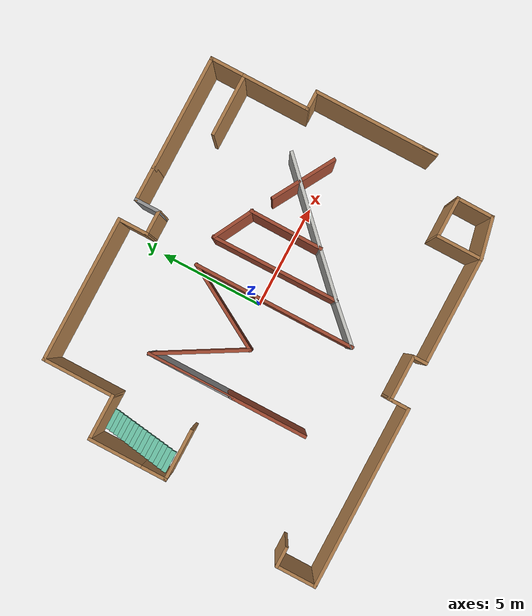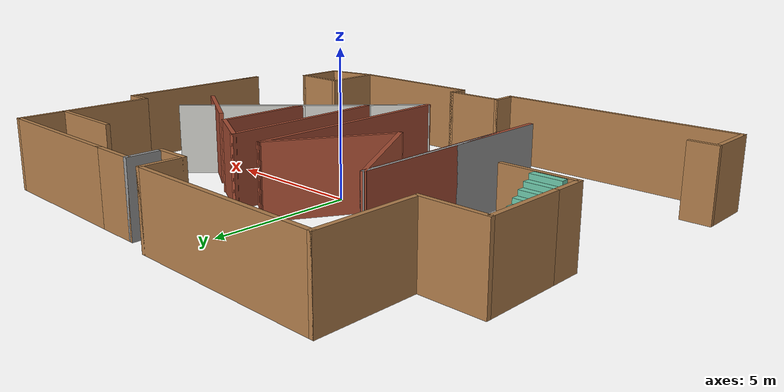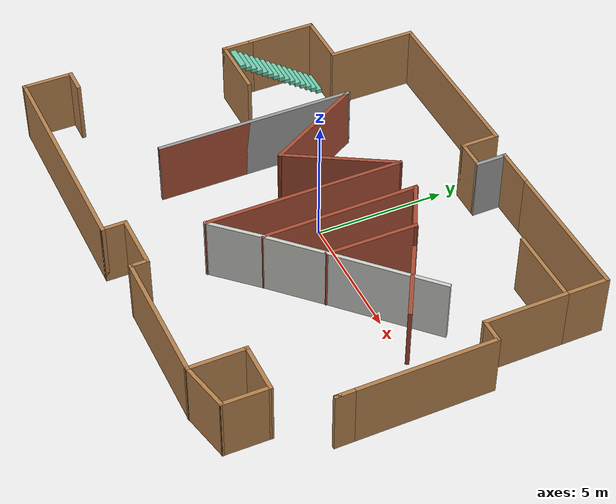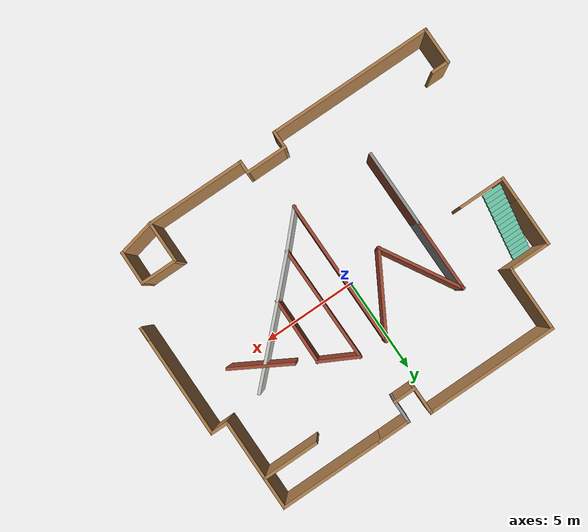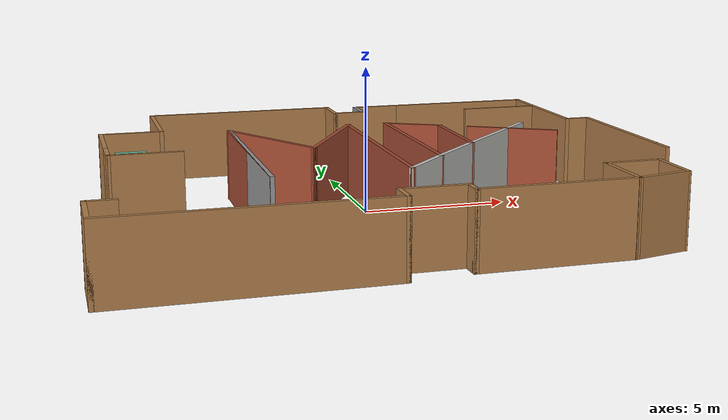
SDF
<?xml version='1.0'?>
<sdf version='1.6'>
  <model name='MDX_Maze'>
    <pose frame=''>-0.168001 -0.43336 0 0 -0 0</pose>
    <link name='Stairs_0'>
      <visual name='Stairs_0_Visual_0'>
        <pose frame=''>-7.65762 3.89363 0.083333 0 -0 0</pose>
        <geometry>
          <box>
            <size>1 0.233333 0.166667</size>
          </box>
        </geometry>
        <material>
          <script>
            <uri>file://media/materials/scripts/gazebo.material</uri>
            <name>Gazebo/Grey</name>
          </script>
          <ambient>0.435294 0.796078 0.67451 1</ambient>
        </material>
        <meta>
          <layer>0</layer>
        </meta>
      </visual>
      <collision name='Stairs_0_Collision_0'>
        <geometry>
          <box>
            <size>1 0.233333 0.166667</size>
          </box>
        </geometry>
        <pose frame=''>-7.65762 3.89363 0.083333 0 -0 0</pose>
      </collision>
      <visual name='Stairs_0_Visual_1'>
        <pose frame=''>-7.65762 3.6603 0.25 0 -0 0</pose>
        <geometry>
          <box>
            <size>1 0.233333 0.166667</size>
          </box>
        </geometry>
        <material>
          <script>
            <uri>file://media/materials/scripts/gazebo.material</uri>
            <name>Gazebo/Grey</name>
          </script>
          <ambient>0.435294 0.796078 0.67451 1</ambient>
        </material>
        <meta>
          <layer>0</layer>
        </meta>
      </visual>
      <collision name='Stairs_0_Collision_1'>
        <geometry>
          <box>
            <size>1 0.233333 0.166667</size>
          </box>
        </geometry>
        <pose frame=''>-7.65762 3.6603 0.25 0 -0 0</pose>
      </collision>
      <visual name='Stairs_0_Visual_2'>
        <pose frame=''>-7.65762 3.42696 0.416667 0 -0 0</pose>
        <geometry>
          <box>
            <size>1 0.233333 0.166667</size>
          </box>
        </geometry>
        <material>
          <script>
            <uri>file://media/materials/scripts/gazebo.material</uri>
            <name>Gazebo/Grey</name>
          </script>
          <ambient>0.435294 0.796078 0.67451 1</ambient>
        </material>
        <meta>
          <layer>0</layer>
        </meta>
      </visual>
      <collision name='Stairs_0_Collision_2'>
        <geometry>
          <box>
            <size>1 0.233333 0.166667</size>
          </box>
        </geometry>
        <pose frame=''>-7.65762 3.42696 0.416667 0 -0 0</pose>
      </collision>
      <visual name='Stairs_0_Visual_3'>
        <pose frame=''>-7.65762 3.19363 0.583333 0 -0 0</pose>
        <geometry>
          <box>
            <size>1 0.233333 0.166667</size>
          </box>
        </geometry>
        <material>
          <script>
            <uri>file://media/materials/scripts/gazebo.material</uri>
            <name>Gazebo/Grey</name>
          </script>
          <ambient>0.435294 0.796078 0.67451 1</ambient>
        </material>
        <meta>
          <layer>0</layer>
        </meta>
      </visual>
      <collision name='Stairs_0_Collision_3'>
        <geometry>
          <box>
            <size>1 0.233333 0.166667</size>
          </box>
        </geometry>
        <pose frame=''>-7.65762 3.19363 0.583333 0 -0 0</pose>
      </collision>
      <visual name='Stairs_0_Visual_4'>
        <pose frame=''>-7.65762 2.9603 0.75 0 -0 0</pose>
        <geometry>
          <box>
            <size>1 0.233333 0.166667</size>
          </box>
        </geometry>
        <material>
          <script>
            <uri>file://media/materials/scripts/gazebo.material</uri>
            <name>Gazebo/Grey</name>
          </script>
          <ambient>0.435294 0.796078 0.67451 1</ambient>
        </material>
        <meta>
          <layer>0</layer>
        </meta>
      </visual>
      <collision name='Stairs_0_Collision_4'>
        <geometry>
          <box>
            <size>1 0.233333 0.166667</size>
          </box>
        </geometry>
        <pose frame=''>-7.65762 2.9603 0.75 0 -0 0</pose>
      </collision>
      <visual name='Stairs_0_Visual_5'>
        <pose frame=''>-7.65762 2.72696 0.916667 0 -0 0</pose>
        <geometry>
          <box>
            <size>1 0.233333 0.166667</size>
          </box>
        </geometry>
        <material>
          <script>
            <uri>file://media/materials/scripts/gazebo.material</uri>
            <name>Gazebo/Grey</name>
          </script>
          <ambient>0.435294 0.796078 0.67451 1</ambient>
        </material>
        <meta>
          <layer>0</layer>
        </meta>
      </visual>
      <collision name='Stairs_0_Collision_5'>
        <geometry>
          <box>
            <size>1 0.233333 0.166667</size>
          </box>
        </geometry>
        <pose frame=''>-7.65762 2.72696 0.916667 0 -0 0</pose>
      </collision>
      <visual name='Stairs_0_Visual_6'>
        <pose frame=''>-7.65762 2.49363 1.08333 0 -0 0</pose>
        <geometry>
          <box>
            <size>1 0.233333 0.166667</size>
          </box>
        </geometry>
        <material>
          <script>
            <uri>file://media/materials/scripts/gazebo.material</uri>
            <name>Gazebo/Grey</name>
          </script>
          <ambient>0.435294 0.796078 0.67451 1</ambient>
        </material>
        <meta>
          <layer>0</layer>
        </meta>
      </visual>
      <collision name='Stairs_0_Collision_6'>
        <geometry>
          <box>
            <size>1 0.233333 0.166667</size>
          </box>
        </geometry>
        <pose frame=''>-7.65762 2.49363 1.08333 0 -0 0</pose>
      </collision>
      <visual name='Stairs_0_Visual_7'>
        <pose frame=''>-7.65762 2.2603 1.25 0 -0 0</pose>
        <geometry>
          <box>
            <size>1 0.233333 0.166667</size>
          </box>
        </geometry>
        <material>
          <script>
            <uri>file://media/materials/scripts/gazebo.material</uri>
            <name>Gazebo/Grey</name>
          </script>
          <ambient>0.435294 0.796078 0.67451 1</ambient>
        </material>
        <meta>
          <layer>0</layer>
        </meta>
      </visual>
      <collision name='Stairs_0_Collision_7'>
        <geometry>
          <box>
            <size>1 0.233333 0.166667</size>
          </box>
        </geometry>
        <pose frame=''>-7.65762 2.2603 1.25 0 -0 0</pose>
      </collision>
      <visual name='Stairs_0_Visual_8'>
        <pose frame=''>-7.65762 2.02696 1.41667 0 -0 0</pose>
        <geometry>
          <box>
            <size>1 0.233333 0.166667</size>
          </box>
        </geometry>
        <material>
          <script>
            <uri>file://media/materials/scripts/gazebo.material</uri>
            <name>Gazebo/Grey</name>
          </script>
          <ambient>0.435294 0.796078 0.67451 1</ambient>
        </material>
        <meta>
          <layer>0</layer>
        </meta>
      </visual>
      <collision name='Stairs_0_Collision_8'>
        <geometry>
          <box>
            <size>1 0.233333 0.166667</size>
          </box>
        </geometry>
        <pose frame=''>-7.65762 2.02696 1.41667 0 -0 0</pose>
      </collision>
      <visual name='Stairs_0_Visual_9'>
        <pose frame=''>-7.65762 1.79363 1.58333 0 -0 0</pose>
        <geometry>
          <box>
            <size>1 0.233333 0.166667</size>
          </box>
        </geometry>
        <material>
          <script>
            <uri>file://media/materials/scripts/gazebo.material</uri>
            <name>Gazebo/Grey</name>
          </script>
          <ambient>0.435294 0.796078 0.67451 1</ambient>
        </material>
        <meta>
          <layer>0</layer>
        </meta>
      </visual>
      <collision name='Stairs_0_Collision_9'>
        <geometry>
          <box>
            <size>1 0.233333 0.166667</size>
          </box>
        </geometry>
        <pose frame=''>-7.65762 1.79363 1.58333 0 -0 0</pose>
      </collision>
      <visual name='Stairs_0_Visual_10'>
        <pose frame=''>-7.65762 1.5603 1.75 0 -0 0</pose>
        <geometry>
          <box>
            <size>1 0.233333 0.166667</size>
          </box>
        </geometry>
        <material>
          <script>
            <uri>file://media/materials/scripts/gazebo.material</uri>
            <name>Gazebo/Grey</name>
          </script>
          <ambient>0.435294 0.796078 0.67451 1</ambient>
        </material>
        <meta>
          <layer>0</layer>
        </meta>
      </visual>
      <collision name='Stairs_0_Collision_10'>
        <geometry>
          <box>
            <size>1 0.233333 0.166667</size>
          </box>
        </geometry>
        <pose frame=''>-7.65762 1.5603 1.75 0 -0 0</pose>
      </collision>
      <visual name='Stairs_0_Visual_11'>
        <pose frame=''>-7.65762 1.32696 1.91667 0 -0 0</pose>
        <geometry>
          <box>
            <size>1 0.233333 0.166667</size>
          </box>
        </geometry>
        <material>
          <script>
            <uri>file://media/materials/scripts/gazebo.material</uri>
            <name>Gazebo/Grey</name>
          </script>
          <ambient>0.435294 0.796078 0.67451 1</ambient>
        </material>
        <meta>
          <layer>0</layer>
        </meta>
      </visual>
      <collision name='Stairs_0_Collision_11'>
        <geometry>
          <box>
            <size>1 0.233333 0.166667</size>
          </box>
        </geometry>
        <pose frame=''>-7.65762 1.32696 1.91667 0 -0 0</pose>
      </collision>
      <visual name='Stairs_0_Visual_12'>
        <pose frame=''>-7.65762 1.09363 2.08333 0 -0 0</pose>
        <geometry>
          <box>
            <size>1 0.233333 0.166667</size>
          </box>
        </geometry>
        <material>
          <script>
            <uri>file://media/materials/scripts/gazebo.material</uri>
            <name>Gazebo/Grey</name>
          </script>
          <ambient>0.435294 0.796078 0.67451 1</ambient>
        </material>
        <meta>
          <layer>0</layer>
        </meta>
      </visual>
      <collision name='Stairs_0_Collision_12'>
        <geometry>
          <box>
            <size>1 0.233333 0.166667</size>
          </box>
        </geometry>
        <pose frame=''>-7.65762 1.09363 2.08333 0 -0 0</pose>
      </collision>
      <visual name='Stairs_0_Visual_13'>
        <pose frame=''>-7.65762 0.860297 2.25 0 -0 0</pose>
        <geometry>
          <box>
            <size>1 0.233333 0.166667</size>
          </box>
        </geometry>
        <material>
          <script>
            <uri>file://media/materials/scripts/gazebo.material</uri>
            <name>Gazebo/Grey</name>
          </script>
          <ambient>0.435294 0.796078 0.67451 1</ambient>
        </material>
        <meta>
          <layer>0</layer>
        </meta>
      </visual>
      <collision name='Stairs_0_Collision_13'>
        <geometry>
          <box>
            <size>1 0.233333 0.166667</size>
          </box>
        </geometry>
        <pose frame=''>-7.65762 0.860297 2.25 0 -0 0</pose>
      </collision>
      <visual name='Stairs_0_Visual_14'>
        <pose frame=''>-7.65762 0.626963 2.41667 0 -0 0</pose>
        <geometry>
          <box>
            <size>1 0.233333 0.166667</size>
          </box>
        </geometry>
        <material>
          <script>
            <uri>file://media/materials/scripts/gazebo.material</uri>
            <name>Gazebo/Grey</name>
          </script>
          <ambient>0.435294 0.796078 0.67451 1</ambient>
        </material>
        <meta>
          <layer>0</layer>
        </meta>
      </visual>
      <collision name='Stairs_0_Collision_14'>
        <geometry>
          <box>
            <size>1 0.233333 0.166667</size>
          </box>
        </geometry>
        <pose frame=''>-7.65762 0.626963 2.41667 0 -0 0</pose>
      </collision>
    </link>
    <link name='Wall_10'>
      <collision name='Wall_10_Collision'>
        <geometry>
          <box>
            <size>7 0.15 2.5</size>
          </box>
        </geometry>
        <pose frame=''>0 0 1.25 0 -0 0</pose>
      </collision>
      <visual name='Wall_10_Visual'>
        <pose frame=''>0 0 1.25 0 -0 0</pose>
        <geometry>
          <box>
            <size>7 0.15 2.5</size>
          </box>
        </geometry>
        <material>
          <script>
            <uri>file://media/materials/scripts/gazebo.material</uri>
            <name>Gazebo/Wood</name>
          </script>
          <ambient>1 1 1 1</ambient>
        </material>
        <meta>
          <layer>0</layer>
        </meta>
      </visual>
      <pose frame=''>-2.8869 7.43809 0 0 -0 0</pose>
    </link>
    <link name='Wall_11'>
      <collision name='Wall_11_Collision'>
        <geometry>
          <box>
            <size>1.5 0.15 2.5</size>
          </box>
        </geometry>
        <pose frame=''>0 0 1.25 0 -0 0</pose>
      </collision>
      <visual name='Wall_11_Visual'>
        <pose frame=''>0 0 1.25 0 -0 0</pose>
        <geometry>
          <box>
            <size>1.5 0.15 2.5</size>
          </box>
        </geometry>
        <material>
          <script>
            <uri>file://media/materials/scripts/gazebo.material</uri>
            <name>Gazebo/Wood</name>
          </script>
          <ambient>1 1 1 1</ambient>
        </material>
        <meta>
          <layer>0</layer>
        </meta>
      </visual>
      <pose frame=''>0.538101 6.76309 0 0 -0 -1.5708</pose>
    </link>
    <link name='Wall_12'>
      <collision name='Wall_12_Collision'>
        <geometry>
          <box>
            <size>1.25 0.15 2.5</size>
          </box>
        </geometry>
        <pose frame=''>0 0 1.25 0 -0 0</pose>
      </collision>
      <visual name='Wall_12_Visual'>
        <pose frame=''>0 0 1.25 0 -0 0</pose>
        <geometry>
          <box>
            <size>1.25 0.15 2.5</size>
          </box>
        </geometry>
        <material>
          <script>
            <uri>file://media/materials/scripts/gazebo.material</uri>
            <name>Gazebo/Wood</name>
          </script>
          <ambient>1 1 1 1</ambient>
        </material>
        <meta>
          <layer>0</layer>
        </meta>
      </visual>
      <pose frame=''>1.0881 6.08809 0 0 -0 0</pose>
    </link>
    <link name='Wall_13'>
      <collision name='Wall_13_Collision'>
        <geometry>
          <box>
            <size>1.25 0.15 2.5</size>
          </box>
        </geometry>
        <pose frame=''>0 0 1.25 0 -0 0</pose>
      </collision>
      <visual name='Wall_13_Visual'>
        <pose frame=''>0 0 1.25 0 -0 0</pose>
        <geometry>
          <box>
            <size>1.25 0.15 2.5</size>
          </box>
        </geometry>
        <material>
          <script>
            <uri>file://media/materials/scripts/gazebo.material</uri>
            <name>Gazebo/Grey</name>
          </script>
          <ambient>1 1 1 1</ambient>
        </material>
        <meta>
          <layer>0</layer>
        </meta>
      </visual>
      <pose frame=''>1.6381 6.63809 0 0 -0 1.5708</pose>
    </link>
    <link name='Wall_14'>
      <collision name='Wall_14_Collision'>
        <geometry>
          <box>
            <size>1.75 0.15 2.5</size>
          </box>
        </geometry>
        <pose frame=''>0 0 1.25 0 -0 0</pose>
      </collision>
      <visual name='Wall_14_Visual'>
        <pose frame=''>0 0 1.25 0 -0 0</pose>
        <geometry>
          <box>
            <size>1.75 0.15 2.5</size>
          </box>
        </geometry>
        <material>
          <script>
            <uri>file://media/materials/scripts/gazebo.material</uri>
            <name>Gazebo/Wood</name>
          </script>
          <ambient>1 1 1 1</ambient>
        </material>
        <meta>
          <layer>0</layer>
        </meta>
      </visual>
      <pose frame=''>2.4381 7.18809 0 0 -0 0</pose>
    </link>
    <link name='Wall_15'>
      <collision name='Wall_15_Collision'>
        <geometry>
          <box>
            <size>5.5 0.15 2.5</size>
          </box>
        </geometry>
        <pose frame=''>0 0 1.25 0 -0 0</pose>
      </collision>
      <visual name='Wall_15_Visual'>
        <pose frame=''>0 0 1.25 0 -0 0</pose>
        <geometry>
          <box>
            <size>5.5 0.15 2.5</size>
          </box>
        </geometry>
        <material>
          <script>
            <uri>file://media/materials/scripts/gazebo.material</uri>
            <name>Gazebo/Wood</name>
          </script>
          <ambient>1 1 1 1</ambient>
        </material>
        <meta>
          <layer>0</layer>
        </meta>
      </visual>
      <pose frame=''>5.9131 7.18809 0 0 -0 0</pose>
    </link>
    <link name='Wall_16'>
      <collision name='Wall_16_Collision'>
        <geometry>
          <box>
            <size>1.75 0.15 2.5</size>
          </box>
        </geometry>
        <pose frame=''>0 0 1.25 0 -0 0</pose>
      </collision>
      <visual name='Wall_16_Visual'>
        <pose frame=''>0 0 1.25 0 -0 0</pose>
        <geometry>
          <box>
            <size>1.75 0.15 2.5</size>
          </box>
        </geometry>
        <material>
          <script>
            <uri>file://media/materials/scripts/gazebo.material</uri>
            <name>Gazebo/Wood</name>
          </script>
          <ambient>1 1 1 1</ambient>
        </material>
        <meta>
          <layer>0</layer>
        </meta>
      </visual>
      <pose frame=''>8.5881 6.38809 0 0 -0 -1.5708</pose>
    </link>
    <link name='Wall_17'>
      <collision name='Wall_17_Collision'>
        <geometry>
          <box>
            <size>3 0.15 2.5</size>
          </box>
        </geometry>
        <pose frame=''>0 0 1.25 0 -0 0</pose>
      </collision>
      <visual name='Wall_17_Visual'>
        <pose frame=''>0 0 1.25 0 -0 0</pose>
        <geometry>
          <box>
            <size>3 0.15 2.5</size>
          </box>
        </geometry>
        <material>
          <script>
            <uri>file://media/materials/scripts/gazebo.material</uri>
            <name>Gazebo/Wood</name>
          </script>
          <ambient>1 1 1 1</ambient>
        </material>
        <meta>
          <layer>0</layer>
        </meta>
      </visual>
      <pose frame=''>7.1631 5.58809 0 0 -0 3.14159</pose>
    </link>
    <link name='Wall_19'>
      <collision name='Wall_19_Collision'>
        <geometry>
          <box>
            <size>3.25 0.15 2.5</size>
          </box>
        </geometry>
        <pose frame=''>0 0 1.25 0 -0 0</pose>
      </collision>
      <visual name='Wall_19_Visual'>
        <pose frame=''>0 0 1.25 0 -0 0</pose>
        <geometry>
          <box>
            <size>3.25 0.15 2.5</size>
          </box>
        </geometry>
        <material>
          <script>
            <uri>file://media/materials/scripts/gazebo.material</uri>
            <name>Gazebo/Wood</name>
          </script>
          <ambient>1 1 1 1</ambient>
        </material>
        <meta>
          <layer>0</layer>
        </meta>
      </visual>
      <pose frame=''>8.5881 4.03808 0 0 -0 -1.5708</pose>
    </link>
    <link name='Wall_20'>
      <collision name='Wall_20_Collision'>
        <geometry>
          <box>
            <size>1 0.15 2.5</size>
          </box>
        </geometry>
        <pose frame=''>0 0 1.25 0 -0 0</pose>
      </collision>
      <visual name='Wall_20_Visual'>
        <pose frame=''>0 0 1.25 0 -0 0</pose>
        <geometry>
          <box>
            <size>1 0.15 2.5</size>
          </box>
        </geometry>
        <material>
          <script>
            <uri>file://media/materials/scripts/gazebo.material</uri>
            <name>Gazebo/Wood</name>
          </script>
          <ambient>1 1 1 1</ambient>
        </material>
        <meta>
          <layer>0</layer>
        </meta>
      </visual>
      <pose frame=''>9.0131 2.48809 0 0 -0 0</pose>
    </link>
    <link name='Wall_21'>
      <collision name='Wall_21_Collision'>
        <geometry>
          <box>
            <size>6 0.15 2.5</size>
          </box>
        </geometry>
        <pose frame=''>0 0 1.25 0 -0 0</pose>
      </collision>
      <visual name='Wall_21_Visual'>
        <pose frame=''>0 0 1.25 0 -0 0</pose>
        <geometry>
          <box>
            <size>6 0.15 2.5</size>
          </box>
        </geometry>
        <material>
          <script>
            <uri>file://media/materials/scripts/gazebo.material</uri>
            <name>Gazebo/Wood</name>
          </script>
          <ambient>1 1 1 1</ambient>
        </material>
        <meta>
          <layer>0</layer>
        </meta>
      </visual>
      <pose frame=''>9.4381 -0.436915 0 0 -0 -1.5708</pose>
    </link>
    <link name='Wall_22'>
      <collision name='Wall_22_Collision'>
        <geometry>
          <box>
            <size>0.75 0.15 2.5</size>
          </box>
        </geometry>
        <pose frame=''>0 0 1.25 0 -0 0</pose>
      </collision>
      <visual name='Wall_22_Visual'>
        <pose frame=''>0 0 1.25 0 -0 0</pose>
        <geometry>
          <box>
            <size>0.75 0.15 2.5</size>
          </box>
        </geometry>
        <material>
          <script>
            <uri>file://media/materials/scripts/gazebo.material</uri>
            <name>Gazebo/Wood</name>
          </script>
          <ambient>1 1 1 1</ambient>
        </material>
        <meta>
          <layer>0</layer>
        </meta>
      </visual>
      <pose frame=''>9.4381 -3.06191 0 0 -0 1.5708</pose>
    </link>
    <link name='Wall_25'>
      <collision name='Wall_25_Collision'>
        <geometry>
          <box>
            <size>1 0.15 2.5</size>
          </box>
        </geometry>
        <pose frame=''>0 0 1.25 0 -0 0</pose>
      </collision>
      <visual name='Wall_25_Visual'>
        <pose frame=''>0 0 1.25 0 -0 0</pose>
        <geometry>
          <box>
            <size>1 0.15 2.5</size>
          </box>
        </geometry>
        <material>
          <script>
            <uri>file://media/materials/scripts/gazebo.material</uri>
            <name>Gazebo/Wood</name>
          </script>
          <ambient>1 1 1 1</ambient>
        </material>
        <meta>
          <layer>0</layer>
        </meta>
      </visual>
      <pose frame=''>-9.0131 -5.58809 0 0 -0 3.14159</pose>
    </link>
    <link name='Wall_26'>
      <collision name='Wall_26_Collision'>
        <geometry>
          <box>
            <size>2 0.15 2.5</size>
          </box>
        </geometry>
        <pose frame=''>0 0 1.25 0 -0 0</pose>
      </collision>
      <visual name='Wall_26_Visual'>
        <pose frame=''>0 0 1.25 0 -0 0</pose>
        <geometry>
          <box>
            <size>2 0.15 2.5</size>
          </box>
        </geometry>
        <material>
          <script>
            <uri>file://media/materials/scripts/gazebo.material</uri>
            <name>Gazebo/Wood</name>
          </script>
          <ambient>1 1 1 1</ambient>
        </material>
        <meta>
          <layer>0</layer>
        </meta>
      </visual>
      <pose frame=''>-9.4381 -6.51309 0 0 -0 -1.5708</pose>
    </link>
    <link name='Wall_27'>
      <collision name='Wall_27_Collision'>
        <geometry>
          <box>
            <size>8.75 0.15 2.5</size>
          </box>
        </geometry>
        <pose frame=''>0 0 1.25 0 -0 0</pose>
      </collision>
      <visual name='Wall_27_Visual'>
        <pose frame=''>0 0 1.25 0 -0 0</pose>
        <geometry>
          <box>
            <size>8.75 0.15 2.5</size>
          </box>
        </geometry>
        <material>
          <script>
            <uri>file://media/materials/scripts/gazebo.material</uri>
            <name>Gazebo/Wood</name>
          </script>
          <ambient>1 1 1 1</ambient>
        </material>
        <meta>
          <layer>0</layer>
        </meta>
      </visual>
      <pose frame=''>-5.1381 -7.43809 0 0 -0 0</pose>
    </link>
    <link name='Wall_28'>
      <collision name='Wall_28_Collision'>
        <geometry>
          <box>
            <size>1 0.15 2.5</size>
          </box>
        </geometry>
        <pose frame=''>0 0 1.25 0 -0 0</pose>
      </collision>
      <visual name='Wall_28_Visual'>
        <pose frame=''>0 0 1.25 0 -0 0</pose>
        <geometry>
          <box>
            <size>1 0.15 2.5</size>
          </box>
        </geometry>
        <material>
          <script>
            <uri>file://media/materials/scripts/gazebo.material</uri>
            <name>Gazebo/Wood</name>
          </script>
          <ambient>1 1 1 1</ambient>
        </material>
        <meta>
          <layer>0</layer>
        </meta>
      </visual>
      <pose frame=''>-0.838102 -7.01309 0 0 -0 1.5708</pose>
    </link>
    <link name='Wall_29'>
      <collision name='Wall_29_Collision'>
        <geometry>
          <box>
            <size>2.25 0.15 2.5</size>
          </box>
        </geometry>
        <pose frame=''>0 0 1.25 0 -0 0</pose>
      </collision>
      <visual name='Wall_29_Visual'>
        <pose frame=''>0 0 1.25 0 -0 0</pose>
        <geometry>
          <box>
            <size>2.25 0.15 2.5</size>
          </box>
        </geometry>
        <material>
          <script>
            <uri>file://media/materials/scripts/gazebo.material</uri>
            <name>Gazebo/Wood</name>
          </script>
          <ambient>1 1 1 1</ambient>
        </material>
        <meta>
          <layer>0</layer>
        </meta>
      </visual>
      <pose frame=''>0.211898 -6.58809 0 0 -0 0</pose>
    </link>
    <link name='Wall_30'>
      <collision name='Wall_30_Collision'>
        <geometry>
          <box>
            <size>0.75 0.15 2.5</size>
          </box>
        </geometry>
        <pose frame=''>0 0 1.25 0 -0 0</pose>
      </collision>
      <visual name='Wall_30_Visual'>
        <pose frame=''>0 0 1.25 0 -0 0</pose>
        <geometry>
          <box>
            <size>0.75 0.15 2.5</size>
          </box>
        </geometry>
        <material>
          <script>
            <uri>file://media/materials/scripts/gazebo.material</uri>
            <name>Gazebo/Wood</name>
          </script>
          <ambient>1 1 1 1</ambient>
        </material>
        <meta>
          <layer>0</layer>
        </meta>
      </visual>
      <pose frame=''>1.2619 -6.88809 0 0 -0 -1.5708</pose>
    </link>
    <link name='Wall_31'>
      <collision name='Wall_31_Collision'>
        <geometry>
          <box>
            <size>5.25 0.15 2.5</size>
          </box>
        </geometry>
        <pose frame=''>0 0 1.25 0 -0 0</pose>
      </collision>
      <visual name='Wall_31_Visual'>
        <pose frame=''>0 0 1.25 0 -0 0</pose>
        <geometry>
          <box>
            <size>5.25 0.15 2.5</size>
          </box>
        </geometry>
        <material>
          <script>
            <uri>file://media/materials/scripts/gazebo.material</uri>
            <name>Gazebo/Wood</name>
          </script>
          <ambient>1 1 1 1</ambient>
        </material>
        <meta>
          <layer>0</layer>
        </meta>
      </visual>
      <pose frame=''>3.8119 -7.18809 0 0 -0 0</pose>
    </link>
    <link name='Wall_32'>
      <collision name='Wall_32_Collision'>
        <geometry>
          <box>
            <size>2.25 0.15 2.5</size>
          </box>
        </geometry>
        <pose frame=''>0 0 1.25 0 -0 0</pose>
      </collision>
      <visual name='Wall_32_Visual'>
        <pose frame=''>0 0 1.25 0 -0 0</pose>
        <geometry>
          <box>
            <size>2.25 0.15 2.5</size>
          </box>
        </geometry>
        <material>
          <script>
            <uri>file://media/materials/scripts/gazebo.material</uri>
            <name>Gazebo/Wood</name>
          </script>
          <ambient>1 1 1 1</ambient>
        </material>
        <meta>
          <layer>0</layer>
        </meta>
      </visual>
      <pose frame=''>6.3619 -6.13809 0 0 -0 1.5708</pose>
    </link>
    <link name='Wall_33'>
      <collision name='Wall_33_Collision'>
        <geometry>
          <box>
            <size>2 0.15 2.5</size>
          </box>
        </geometry>
        <pose frame=''>0 0 1.25 0 -0 0</pose>
      </collision>
      <visual name='Wall_33_Visual'>
        <pose frame=''>0 0 1.25 0 -0 0</pose>
        <geometry>
          <box>
            <size>2 0.15 2.5</size>
          </box>
        </geometry>
        <material>
          <script>
            <uri>file://media/materials/scripts/gazebo.material</uri>
            <name>Gazebo/Wood</name>
          </script>
          <ambient>1 1 1 1</ambient>
        </material>
        <meta>
          <layer>0</layer>
        </meta>
      </visual>
      <pose frame=''>7.2869 -5.08809 0 0 -0 0</pose>
    </link>
    <link name='Wall_34'>
      <collision name='Wall_34_Collision'>
        <geometry>
          <box>
            <size>1.83866 0.15 2.5</size>
          </box>
        </geometry>
        <pose frame=''>0 0 1.25 0 -0 0</pose>
      </collision>
      <visual name='Wall_34_Visual'>
        <pose frame=''>0 0 1.25 0 -0 0</pose>
        <geometry>
          <box>
            <size>1.83866 0.15 2.5</size>
          </box>
        </geometry>
        <material>
          <script>
            <uri>file://media/materials/scripts/gazebo.material</uri>
            <name>Gazebo/Wood</name>
          </script>
          <ambient>1 1 1 1</ambient>
        </material>
        <meta>
          <layer>0</layer>
        </meta>
      </visual>
      <pose frame=''>8.20245 -5.93236 0 0 -0 -1.58199</pose>
    </link>
    <link name='Wall_38'>
      <collision name='Wall_38_Collision'>
        <geometry>
          <box>
            <size>2.02676 0.15 2.5</size>
          </box>
        </geometry>
        <pose frame=''>0 0 1.25 0 -0 0</pose>
      </collision>
      <visual name='Wall_38_Visual'>
        <pose frame=''>0 0 1.25 0 -0 0</pose>
        <geometry>
          <box>
            <size>2.02676 0.15 2.5</size>
          </box>
        </geometry>
        <material>
          <script>
            <uri>file://media/materials/scripts/gazebo.material</uri>
            <name>Gazebo/Wood</name>
          </script>
          <ambient>1 1 1 1</ambient>
        </material>
        <meta>
          <layer>0</layer>
        </meta>
      </visual>
      <pose frame=''>7.27745 -6.98236 0 0 -0 -2.92057</pose>
    </link>
    <link name='Wall_40'>
      <collision name='Wall_40_Collision'>
        <geometry>
          <box>
            <size>1.25 0.15 2.5</size>
          </box>
        </geometry>
        <pose frame=''>0 0 1.25 0 -0 0</pose>
      </collision>
      <visual name='Wall_40_Visual'>
        <pose frame=''>0 0 1.25 0 -0 0</pose>
        <geometry>
          <box>
            <size>1.25 0.15 2.5</size>
          </box>
        </geometry>
        <material>
          <script>
            <uri>file://media/materials/scripts/gazebo.material</uri>
            <name>Gazebo/Wood</name>
          </script>
          <ambient>1 1 1 1</ambient>
        </material>
        <meta>
          <layer>0</layer>
        </meta>
      </visual>
      <pose frame=''>-8.4119 0.938085 0 0 -0 -1.5708</pose>
    </link>
    <link name='Wall_41'>
      <collision name='Wall_41_Collision'>
        <geometry>
          <box>
            <size>2.5 0.15 2.5</size>
          </box>
        </geometry>
        <pose frame=''>0 0 1.25 0 -0 0</pose>
      </collision>
      <visual name='Wall_41_Visual'>
        <pose frame=''>0 0 1.25 0 -0 0</pose>
        <geometry>
          <box>
            <size>2.5 0.15 2.5</size>
          </box>
        </geometry>
        <material>
          <script>
            <uri>file://media/materials/scripts/gazebo.material</uri>
            <name>Gazebo/Wood</name>
          </script>
          <ambient>1 1 1 1</ambient>
        </material>
        <meta>
          <layer>0</layer>
        </meta>
      </visual>
      <pose frame=''>-7.2369 0.388085 0 0 -0 0</pose>
    </link>
    <link name='Wall_43'>
      <collision name='Wall_43_Collision'>
        <geometry>
          <box>
            <size>7.75 0.15 2.5</size>
          </box>
        </geometry>
        <pose frame=''>0 0 1.25 0 -0 0</pose>
      </collision>
      <visual name='Wall_43_Visual'>
        <pose frame=''>0 0 1.25 0 -0 0</pose>
        <geometry>
          <box>
            <size>7.75 0.15 2.5</size>
          </box>
        </geometry>
        <material>
          <script>
            <uri>file://media/materials/scripts/gazebo.material</uri>
            <name>Gazebo/Grey</name>
          </script>
          <ambient>1 1 1 1</ambient>
        </material>
        <meta>
          <layer>0</layer>
        </meta>
      </visual>
      <pose frame=''>-3.97617 -0.245125 0 0 -0 -1.5708</pose>
    </link>
    <link name='Wall_44'>
      <collision name='Wall_44_Collision'>
        <geometry>
          <box>
            <size>7.75 0.15 2.5</size>
          </box>
        </geometry>
        <pose frame=''>0 0 1.25 0 -0 0</pose>
      </collision>
      <visual name='Wall_44_Visual'>
        <pose frame=''>0 0 1.25 0 -0 0</pose>
        <geometry>
          <box>
            <size>7.75 0.15 2.5</size>
          </box>
        </geometry>
        <material>
          <script>
            <uri>file://media/materials/scripts/gazebo.material</uri>
            <name>Gazebo/Bricks</name>
          </script>
          <ambient>1 1 1 1</ambient>
        </material>
        <meta>
          <layer>0</layer>
        </meta>
      </visual>
      <pose frame=''>-3.97617 -0.245125 0 0 -0 1.5708</pose>
    </link>
    <link name='Wall_45'>
      <collision name='Wall_45_Collision'>
        <geometry>
          <box>
            <size>4.5 0.15 2.5</size>
          </box>
        </geometry>
        <pose frame=''>0 0 1.25 0 -0 0</pose>
      </collision>
      <visual name='Wall_45_Visual'>
        <pose frame=''>0 0 1.25 0 -0 0</pose>
        <geometry>
          <box>
            <size>4.5 0.15 2.5</size>
          </box>
        </geometry>
        <material>
          <script>
            <uri>file://media/materials/scripts/gazebo.material</uri>
            <name>Gazebo/Bricks</name>
          </script>
          <ambient>1 1 1 1</ambient>
        </material>
        <meta>
          <layer>0</layer>
        </meta>
      </visual>
      <pose frame=''>-2.88867 1.67127 0 0 -0 -1.0472</pose>
    </link>
    <link name='Wall_46'>
      <collision name='Wall_46_Collision'>
        <geometry>
          <box>
            <size>4.5 0.15 2.5</size>
          </box>
        </geometry>
        <pose frame=''>0 0 1.25 0 -0 0</pose>
      </collision>
      <visual name='Wall_46_Visual'>
        <pose frame=''>0 0 1.25 0 -0 0</pose>
        <geometry>
          <box>
            <size>4.5 0.15 2.5</size>
          </box>
        </geometry>
        <material>
          <script>
            <uri>file://media/materials/scripts/gazebo.material</uri>
            <name>Gazebo/Bricks</name>
          </script>
          <ambient>1 1 1 1</ambient>
        </material>
        <meta>
          <layer>0</layer>
        </meta>
      </visual>
      <pose frame=''>-0.713666 1.67127 0 0 -0 1.0472</pose>
    </link>
    <link name='Wall_47'>
      <collision name='Wall_47_Collision'>
        <geometry>
          <box>
            <size>7.75 0.15 2.5</size>
          </box>
        </geometry>
        <pose frame=''>0 0 1.25 0 -0 0</pose>
      </collision>
      <visual name='Wall_47_Visual'>
        <pose frame=''>0 0 1.25 0 -0 0</pose>
        <geometry>
          <box>
            <size>7.75 0.15 2.5</size>
          </box>
        </geometry>
        <material>
          <script>
            <uri>file://media/materials/scripts/gazebo.material</uri>
            <name>Gazebo/Bricks</name>
          </script>
          <ambient>1 1 1 1</ambient>
        </material>
        <meta>
          <layer>0</layer>
        </meta>
      </visual>
      <pose frame=''>0.373834 -0.245125 0 0 -0 -1.5708</pose>
    </link>
    <link name='Wall_5'>
      <collision name='Wall_5_Collision'>
        <geometry>
          <box>
            <size>2.75 0.15 2.5</size>
          </box>
        </geometry>
        <pose frame=''>0 0 1.25 0 -0 0</pose>
      </collision>
      <visual name='Wall_5_Visual'>
        <pose frame=''>0 0 1.25 0 -0 0</pose>
        <geometry>
          <box>
            <size>2.75 0.15 2.5</size>
          </box>
        </geometry>
        <material>
          <script>
            <uri>file://media/materials/scripts/gazebo.material</uri>
            <name>Gazebo/Wood</name>
          </script>
          <ambient>1 1 1 1</ambient>
        </material>
        <meta>
          <layer>0</layer>
        </meta>
      </visual>
      <pose frame=''>-8.4119 2.78809 0 0 -0 -1.5708</pose>
    </link>
    <link name='Wall_50'>
      <collision name='Wall_50_Collision'>
        <geometry>
          <box>
            <size>6.13172 0.15 2.5</size>
          </box>
        </geometry>
        <pose frame=''>0 0 1.25 0 -0 0</pose>
      </collision>
      <visual name='Wall_50_Visual'>
        <pose frame=''>0 0 1.25 0 -0 0</pose>
        <geometry>
          <box>
            <size>6.13172 0.15 2.5</size>
          </box>
        </geometry>
        <material>
          <script>
            <uri>file://media/materials/scripts/gazebo.material</uri>
            <name>Gazebo/Bricks</name>
          </script>
          <ambient>1 1 1 1</ambient>
        </material>
        <meta>
          <layer>0</layer>
        </meta>
      </visual>
      <pose frame=''>1.80958 0.481862 0 0 -0 1.57818</pose>
    </link>
    <link name='Wall_51'>
      <collision name='Wall_51_Collision'>
        <geometry>
          <box>
            <size>2.13583 0.15 2.5</size>
          </box>
        </geometry>
        <pose frame=''>0 0 1.25 0 -0 0</pose>
      </collision>
      <visual name='Wall_51_Visual'>
        <pose frame=''>0 0 1.25 0 -0 0</pose>
        <geometry>
          <box>
            <size>2.13583 0.15 2.5</size>
          </box>
        </geometry>
        <material>
          <script>
            <uri>file://media/materials/scripts/gazebo.material</uri>
            <name>Gazebo/Bricks</name>
          </script>
          <ambient>1 1 1 1</ambient>
        </material>
        <meta>
          <layer>0</layer>
        </meta>
      </visual>
      <pose frame=''>2.6884 2.98537 0 0 -0 -0.486402</pose>
    </link>
    <link name='Wall_52'>
      <collision name='Wall_52_Collision'>
        <geometry>
          <box>
            <size>3.54195 0.15 2.5</size>
          </box>
        </geometry>
        <pose frame=''>0 0 1.25 0 -0 0</pose>
      </collision>
      <visual name='Wall_52_Visual'>
        <pose frame=''>0 0 1.25 0 -0 0</pose>
        <geometry>
          <box>
            <size>3.54195 0.15 2.5</size>
          </box>
        </geometry>
        <material>
          <script>
            <uri>file://media/materials/scripts/gazebo.material</uri>
            <name>Gazebo/Bricks</name>
          </script>
          <ambient>1 1 1 1</ambient>
        </material>
        <meta>
          <layer>0</layer>
        </meta>
      </visual>
      <pose frame=''>3.52825 0.848577 0 0 -0 -1.57951</pose>
    </link>
    <link name='Wall_65'>
      <collision name='Wall_65_Collision'>
        <geometry>
          <box>
            <size>2.5 0.15 2.5</size>
          </box>
        </geometry>
        <pose frame=''>0 0 1.25 0 -0 0</pose>
      </collision>
      <visual name='Wall_65_Visual'>
        <pose frame=''>0 0 1.25 0 -0 0</pose>
        <geometry>
          <box>
            <size>2.5 0.15 2.5</size>
          </box>
        </geometry>
        <material>
          <script>
            <uri>file://media/materials/scripts/gazebo.material</uri>
            <name>Gazebo/CeilingTiled</name>
          </script>
          <ambient>1 1 1 1</ambient>
        </material>
        <meta>
          <layer>0</layer>
        </meta>
      </visual>
      <pose frame=''>2.6625 -1.67807 0 0 -0 0.785398</pose>
    </link>
    <link name='Wall_7'>
      <collision name='Wall_7_Collision'>
        <geometry>
          <box>
            <size>2.25 0.15 2.5</size>
          </box>
        </geometry>
        <pose frame=''>0 0 1.25 0 -0 0</pose>
      </collision>
      <visual name='Wall_7_Visual'>
        <pose frame=''>0 0 1.25 0 -0 0</pose>
        <geometry>
          <box>
            <size>2.25 0.15 2.5</size>
          </box>
        </geometry>
        <material>
          <script>
            <uri>file://media/materials/scripts/gazebo.material</uri>
            <name>Gazebo/Wood</name>
          </script>
          <ambient>1 1 1 1</ambient>
        </material>
        <meta>
          <layer>0</layer>
        </meta>
      </visual>
      <pose frame=''>-7.3619 4.08809 0 0 -0 0</pose>
    </link>
    <link name='Wall_72'>
      <collision name='Wall_72_Collision'>
        <geometry>
          <box>
            <size>3.25 0.15 2.5</size>
          </box>
        </geometry>
        <pose frame=''>0 0 1.25 0 -0 0</pose>
      </collision>
      <visual name='Wall_72_Visual'>
        <pose frame=''>0 0 1.25 0 -0 0</pose>
        <geometry>
          <box>
            <size>3.25 0.15 2.5</size>
          </box>
        </geometry>
        <material>
          <script>
            <uri>file://media/materials/scripts/gazebo.material</uri>
            <name>Gazebo/Bricks</name>
          </script>
          <ambient>1 1 1 1</ambient>
        </material>
        <meta>
          <layer>0</layer>
        </meta>
      </visual>
      <pose frame=''>5.838 1.21937 0 0 -0 -0.523599</pose>
    </link>
    <link name='Wall_74'>
      <collision name='Wall_74_Collision'>
        <geometry>
          <box>
            <size>2.26782 0.15 2.5</size>
          </box>
        </geometry>
        <pose frame=''>0 0 1.25 0 -0 0</pose>
      </collision>
      <visual name='Wall_74_Visual'>
        <pose frame=''>0 0 1.25 0 -0 0</pose>
        <geometry>
          <box>
            <size>2.26782 0.15 2.5</size>
          </box>
        </geometry>
        <material>
          <script>
            <uri>file://media/materials/scripts/gazebo.material</uri>
            <name>Gazebo/CeilingTiled</name>
          </script>
          <ambient>1 1 1 1</ambient>
        </material>
        <meta>
          <layer>0</layer>
        </meta>
      </visual>
      <pose frame=''>1.10274 -3.27702 0 0 -0 0.811574</pose>
    </link>
    <link name='Wall_76'>
      <collision name='Wall_76_Collision'>
        <geometry>
          <box>
            <size>4.5038 0.15 2.5</size>
          </box>
        </geometry>
        <pose frame=''>0 0 1.25 0 -0 0</pose>
      </collision>
      <visual name='Wall_76_Visual'>
        <pose frame=''>0 0 1.25 0 -0 0</pose>
        <geometry>
          <box>
            <size>4.5038 0.15 2.5</size>
          </box>
        </geometry>
        <material>
          <script>
            <uri>file://media/materials/scripts/gazebo.material</uri>
            <name>Gazebo/CeilingTiled</name>
          </script>
          <ambient>1 1 1 1</ambient>
        </material>
        <meta>
          <layer>0</layer>
        </meta>
      </visual>
      <pose frame=''>5.04758 0.677015 0 0 -0 0.775655</pose>
    </link>
    <link name='Wall_9'>
      <collision name='Wall_9_Collision'>
        <geometry>
          <box>
            <size>3.5 0.15 2.5</size>
          </box>
        </geometry>
        <pose frame=''>0 0 1.25 0 -0 0</pose>
      </collision>
      <visual name='Wall_9_Visual'>
        <pose frame=''>0 0 1.25 0 -0 0</pose>
        <geometry>
          <box>
            <size>3.5 0.15 2.5</size>
          </box>
        </geometry>
        <material>
          <script>
            <uri>file://media/materials/scripts/gazebo.material</uri>
            <name>Gazebo/Wood</name>
          </script>
          <ambient>1 1 1 1</ambient>
        </material>
        <meta>
          <layer>0</layer>
        </meta>
      </visual>
      <pose frame=''>-6.3119 5.76309 0 0 -0 1.5708</pose>
    </link>
    <static>1</static>
  </model>
</sdf>
